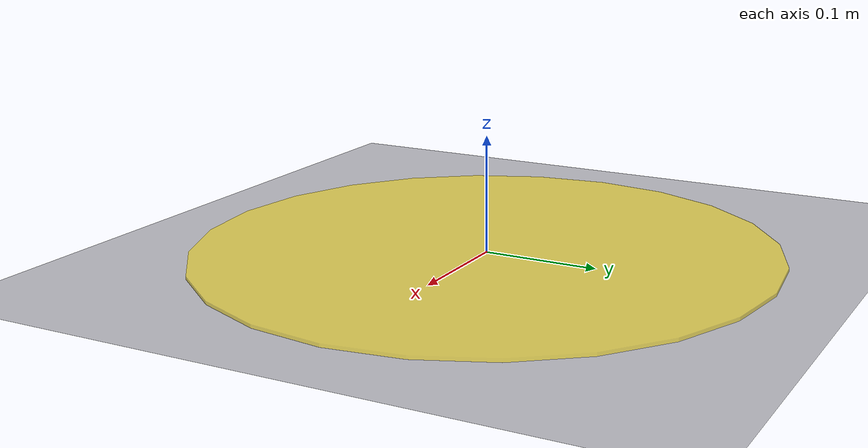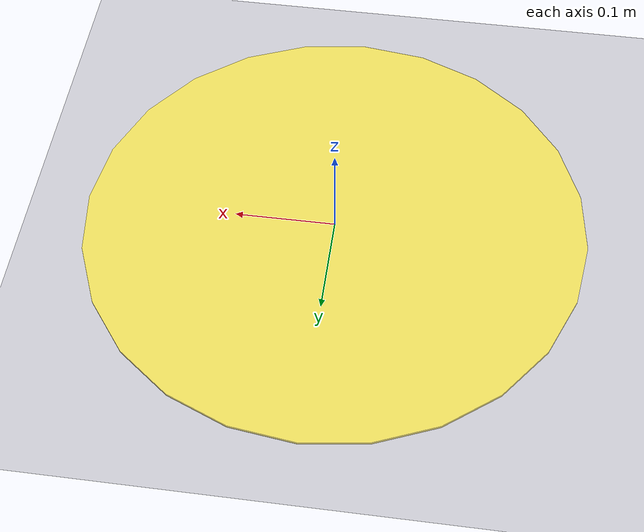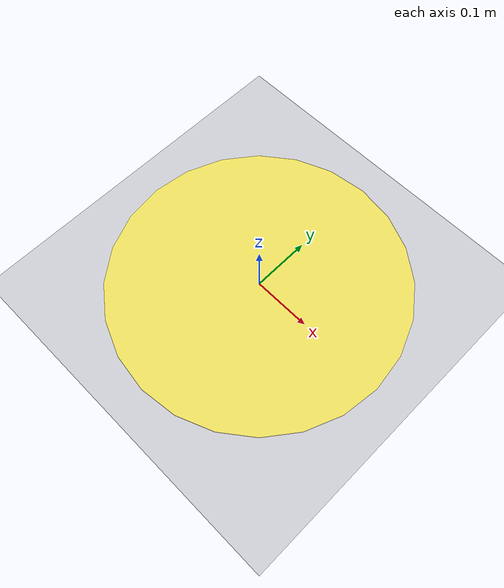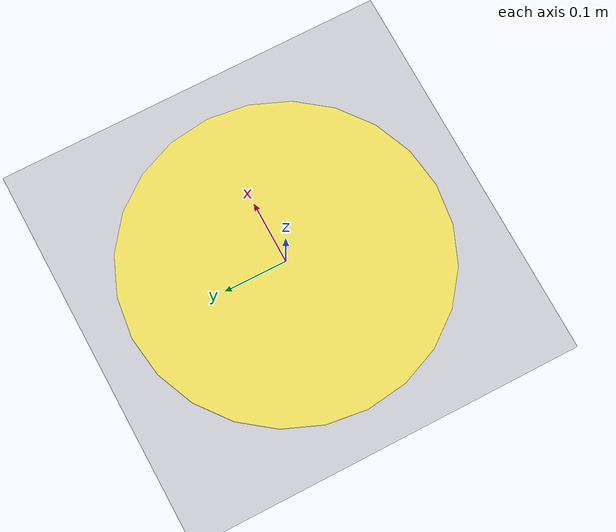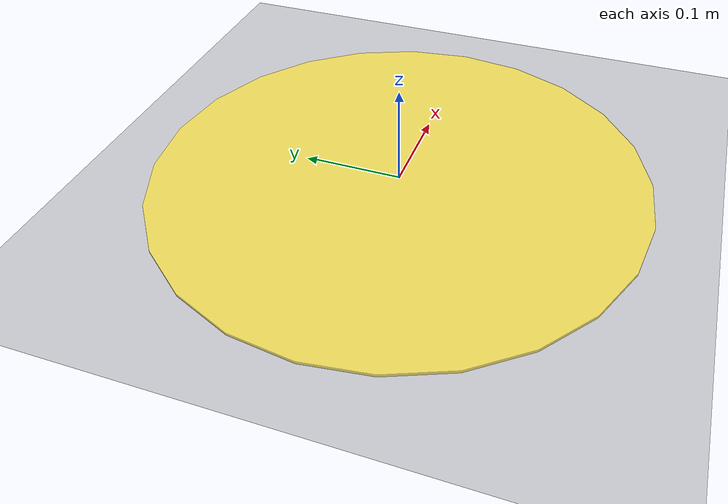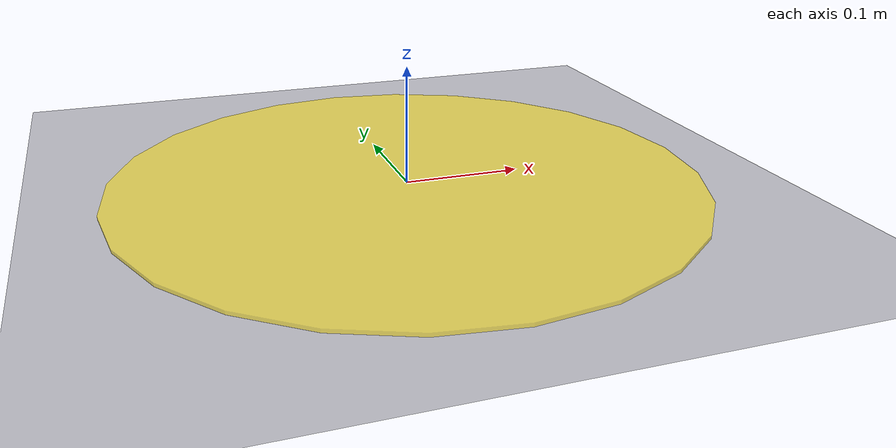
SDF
<?xml version="1.0" ?>
<sdf version="1.6">
  <world name="nash_world">

    <!-- ── gz-sim required system plugins ──────────────────────── -->
    <plugin filename="gz-sim-physics-system"
            name="gz::sim::systems::Physics"/>
    <plugin filename="gz-sim-user-commands-system"
            name="gz::sim::systems::UserCommands"/>
    <plugin filename="gz-sim-scene-broadcaster-system"
            name="gz::sim::systems::SceneBroadcaster"/>
    <plugin filename="gz-sim-sensors-system"
            name="gz::sim::systems::Sensors">
      <render_engine>ogre2</render_engine>
    </plugin>

    <!-- ── Lighting ────────────────────────────────────────────── -->
    <light name="sun" type="directional">
      <cast_shadows>true</cast_shadows>
      <pose>0 0 10 0 0 0</pose>
      <diffuse>0.9 0.9 0.9 1</diffuse>
      <specular>0.2 0.2 0.2 1</specular>
      <direction>-0.5 0.1 -0.9</direction>
      <attenuation>
        <range>1000</range>
        <constant>0.9</constant>
        <linear>0.01</linear>
        <quadratic>0.001</quadratic>
      </attenuation>
    </light>

    <!-- ── Ground plane (no walls, no obstacles) ───────────────── -->
    <model name="ground_plane">
      <static>true</static>
      <link name="link">
        <collision name="surface">
          <geometry>
            <plane><normal>0 0 1</normal><size>30 30</size></plane>
          </geometry>
        </collision>
        <visual name="surface">
          <geometry>
            <plane><normal>0 0 1</normal><size>30 30</size></plane>
          </geometry>
          <material>
            <ambient>0.75 0.75 0.78 1</ambient>
            <diffuse>0.75 0.75 0.78 1</diffuse>
          </material>
        </visual>
      </link>
    </model>

    <!-- ── Centre marker (visual only, marks the conflict zone) ── -->
    <model name="centre_marker">
      <static>true</static>
      <pose>0 0 0.002 0 0 0</pose>
      <link name="l">
        <visual name="v">
          <geometry>
            <cylinder><radius>0.25</radius><length>0.003</length></cylinder>
          </geometry>
          <material>
            <ambient>1.0 0.9 0.2 0.7</ambient>
            <diffuse>1.0 0.9 0.2 0.7</diffuse>
          </material>
        </visual>
      </link>
    </model>

    <!-- ── Physics ──────────────────────────────────────────────── -->
    <physics name="default" type="ode">
      <real_time_update_rate>1000</real_time_update_rate>
      <max_step_size>0.001</max_step_size>
    </physics>

  </world>
</sdf>
